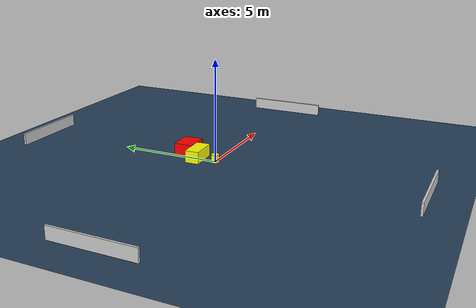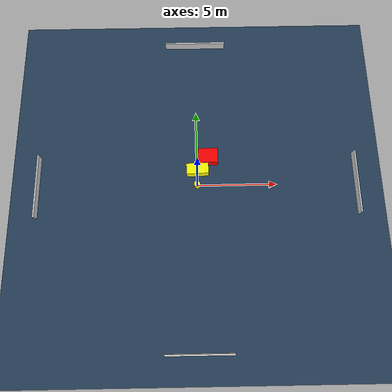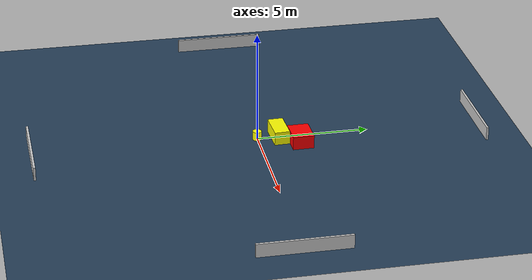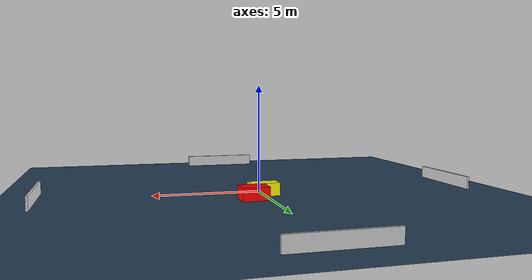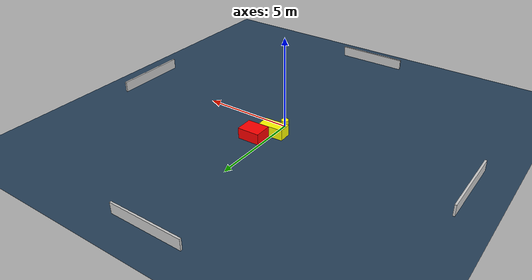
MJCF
<?xml version="1.0" ?>
<mujoco model="generated_environment">
  <option timestep="0.01" integrator="RK4" cone="elliptic"/>
  <default>
    <geom density="1"/>
  </default>
  <asset>
    <texture builtin="gradient" height="3072" name="skybox" rgb1="0.3 0.5 0.7" rgb2="0 0 0" type="skybox" width="512"/>
    <texture builtin="checker" height="300" name="groundplane" rgb1="0.2 0.3 0.4" rgb2="0.1 0.2 0.3" type="2d" width="300"/>
    <material name="groundplane" reflectance="0.2" texrepeat="5 5" texture="groundplane"/>
  </asset>
  <worldbody>
    <light dir="0 0 -1" directional="true" pos="0 0 1.5"/>
    <geom condim="3" friction="0.5 0.005 0.001" material="groundplane" name="floor" pos="0 0 0" size="0 0 0.05" type="plane"/>
    <body name="walls">
      <geom name="wall_1" condim="4" pos="-10.0 0.0 0.3" rgba="0.800000011920929 0.800000011920929 0.800000011920929 1.0" size="0.05 2.0 0.3" type="box"/>
      <geom name="wall_2" condim="4" pos="10.0 0.0 0.3" rgba="0.800000011920929 0.800000011920929 0.800000011920929 1.0" size="0.05 2.0 0.3" type="box"/>
      <geom name="wall_3" condim="4" pos="0.0 -10.0 0.3" rgba="0.800000011920929 0.800000011920929 0.800000011920929 1.0" size="2.0 0.05 0.3" type="box"/>
      <geom name="wall_4" condim="4" pos="0.0 10.0 0.3" rgba="0.800000011920929 0.800000011920929 0.800000011920929 1.0" size="2.0 0.05 0.3" type="box"/>
    </body>
    <body name="robot">
      <joint name="joint_x" type="slide" pos="0 0 0" axis="1 0 0"/>
      <joint name="joint_y" type="slide" pos="0 0 0" axis="0 1 0"/>
      <geom name="robot" type="cylinder" pos="0.0 0.0 0.2" size="0.2 0.2 0.0" mass="5.0" friction="1.0 0.005 0.0001" condim="4" rgba="1.0 1.0 0.0 1.0"/>
    </body>
    <body name="obstacle_1_movable">
      <geom name="obstacle_1_movable" condim="4" pos="0.03460546745127975 0.9659439979342644 0.3" euler="0 0 182.461645748988" friction="0.0 0.005 0.001" rgba="1.0 1.0 0.0 1.0" size="0.68792624972211 0.3418983447776837 0.3" type="box" mass="0.1"/>
      <joint type="free"/>
    </body>
    <body name="obstacle_2_static">
      <geom name="obstacle_2_static" condim="4" pos="0.7081659796984529 1.8185066844454063 0.3" euler="0 0 271.04420975021605" friction="0.0 0.005 0.001" rgba="1.0 0.0 0.0 1.0" size="0.4726598521052344 0.6149384477132964 0.3" type="box"/>
    </body>
  </worldbody>
  <actuator>
    <motor name="actuator_x" joint="joint_x" gear="1" ctrlrange="-1 1"/>
    <motor name="actuator_y" joint="joint_y" gear="1" ctrlrange="-1 1"/>
  </actuator>
</mujoco>
